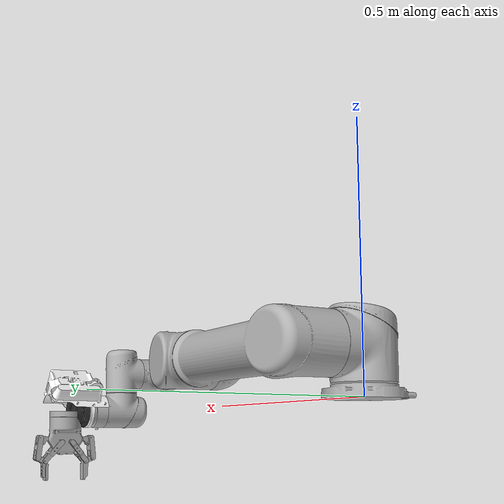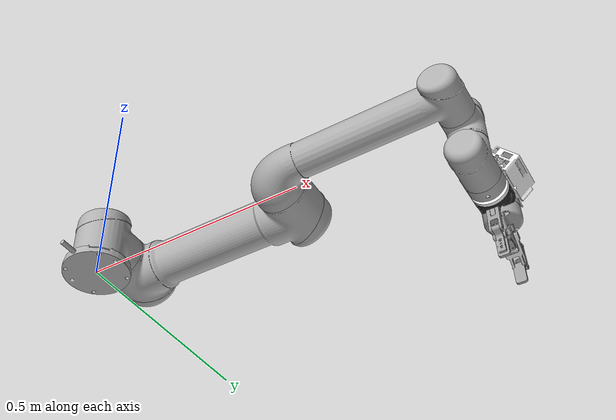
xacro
<?xml version="1.0"?>
<robot xmlns:xacro="http://www.ros.org/wiki/xacro"
       name="xamla_egomo" >
  <!-- gripper -->
    <xacro:include filename="$(find robotiq_85_description)/urdf/robotiq_85_gripper.urdf.xacro" />

  <!-- ur5 -->
  <xacro:include filename="$(find xamla_egomo)/urdf/ur5.urdf.xacro" />

  <!-- arm -->
	<!-- property list -->
	<!--xacro:property name="robot_stand_height" value="0.20"/-->
	<xacro:property name="arm_prefix" value=""/>
	<xacro:property name="joint_limited" value="false"/>
<!-- instantiating arm and gripper -->
	<xacro:ur5_robot prefix="${arm_prefix}" joint_limited='${joint_limited}'/>
<link name="world"/>
  <joint name="world_joint" type="fixed">
    <parent link="world"/>
    <child link="base_link"/>
    <origin rpy="0.0 0.0 0.0" xyz="0.0 0.0 0.0"/>
  </joint>

<link name="base"/>
  <joint name="base_link-base_fixed_joint" type="fixed">
    <!-- NOTE: this rotation is only needed as long as base_link itself is
                 not corrected wrt the real robot (ie: rotated over 180
                 degrees)
      -->
    <origin rpy="0 0 -3.14159265" xyz="0 0 0"/>
    <parent link="${arm_prefix}base_link"/>
    <child link="base"/>
  </joint>

<link name="tool0"/>
  <joint name="wrist_3_link-tool0_fixed_joint" type="fixed">
    <origin rpy="-1.570796326795 0 0" xyz="0 0.0823 0"/>
    <parent link="wrist_3_link"/>
    <child link="tool0"/>
  </joint>

  <!-- force torque sensor (robotiq) -->

  <link name="fts_robotside">
    <inertial>
      <origin rpy="0 0 0" xyz="0 0 0"/>
      <mass value="0.65"/>
      <inertia ixx="0.000661171875" ixy="0" ixz="0" iyy="0.000661171875" iyz="0" izz="0.00117"/>
    </inertial>
    <visual>
      <origin rpy="0 3.1415926535898 -1.570796326795" xyz="0 0 0.0375"/>
      <geometry>
        <mesh filename="package://xamla_egomo/meshes/robotiq-ft300/visual/ft300.dae"/>
      </geometry>
    </visual>
    <collision>
      <origin rpy="0 3.1415926535898 -1.570796326795" xyz="0 0 0.0375"/>
      <geometry>
        <mesh filename="package://xamla_egomo/meshes/robotiq-ft300/collision/ft300.stl"/>
      </geometry>
    </collision>
  </link>

  <!-- virtual measurement frame -->
  <joint name="measurment_joint" type="fixed">
    <origin rpy="0 0 0" xyz="0 0 0.01625"/>
    <parent link="fts_robotside"/>
    <child link="robotiq_force_torque_frame_id"/>
  </joint>
  <link name="robotiq_force_torque_frame_id"/>

  <!-- toolside frame -->
  <joint name="toolside_joint" type="fixed">
    <origin rpy="0 0 0" xyz="0 0 0.0375"/>
    <parent link="fts_robotside"/>
    <child link="fts_toolside"/>
  </joint>
  <link name="fts_toolside"/>

  <link name="camera_robotside">
    <visual>
      <origin rpy="0 0 0" xyz="0 0 0"/>
      <geometry>
        <mesh filename="package://xamla_egomo/meshes/egomo-1/visual/egomo-1.dae"/>
      </geometry>
      <material name="white">
        <color rgba="1 1 1 1"/>
      </material>
    </visual>
    <collision>
      <origin rpy="0 0 0" xyz="0 0 0"/>
      <geometry>
        <mesh filename="package://xamla_egomo/meshes/egomo-1/collision/egomo-1.stl"/>
      </geometry>
    </collision>
  </link>

  <!-- Mount the force torque sensor (fts) to the robot -->

  <joint name="fts_to_robot" type="fixed" >
    <parent link="tool0" />
    <child link="fts_robotside" />
    <origin xyz="0 0 0.011" rpy="0 0 0" />
  </joint>

  <!-- Mount the cameras to the robot -->

  <joint name="camera_to_robot" type="fixed" >
    <parent link="tool0" />
    <child link="camera_robotside" />
    <origin xyz="0 0 0" rpy="0 0 0" />
  </joint>

	<!-- end of arm workcell joint definitions-->
    <xacro:robotiq_85_gripper prefix="" parent="fts_toolside" >
	<origin xyz="0.0 0 0.0109" rpy="0 -${pi/2} ${pi/2}"/>
    </xacro:robotiq_85_gripper>

</robot>

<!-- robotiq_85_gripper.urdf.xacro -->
<robot name="robotiq_85_gripper" xmlns:xacro="http://ros.org/wiki/xacro">
    <xacro:macro name="robotiq_85_gripper" params="prefix parent *origin">
        <link name="${prefix}robotiq_85_coupling">
            <visual>
                <geometry>
                    <mesh filename="package://egomo_ur5/meshes/robotiq-2-finger-85/visual/gripper_coupling.dae" />
                </geometry>
                <origin rpy="0 0 ${pi}" xyz="0 0 0" />
            </visual>
            <collision>
                <geometry>
                    <mesh filename="package://egomo_ur5/meshes/robotiq-2-finger-85/collision/gripper_coupling.stl" />
                </geometry>
                <origin rpy="0 0 ${pi}" xyz="0 0 0" />
            </collision>
        </link>
        <!-- Mount the gripper to flansh -->
        <joint name="${prefix}gripper_to_flange" type="fixed">
            <parent link="${parent}" />
            <child link="${prefix}robotiq_85_coupling" />
            <xacro:insert_block name="origin" />
        </joint>
        <joint name="${prefix}robotiq_85_base_joint" type="fixed">
            <parent link="${prefix}robotiq_85_coupling" />
            <child link="robotiq_85_base" />
            <origin xyz="0 0 0.0109" rpy="0 0 0" />
            <xacro:insert_block name="origin" />
        </joint>
        <link name="${prefix}robotiq_85_base">
            <visual>
                <geometry>
                    <mesh filename="package://egomo_ur5/meshes/robotiq-2-finger-85/visual/gripper_base.dae" />
                </geometry>
                <origin rpy="0 0 ${pi}" xyz="0 0 0" />
            </visual>
            <collision>
                <geometry>
                    <mesh filename="package://egomo_ur5/meshes/robotiq-2-finger-85/collision/gripper_base.stl" />
                </geometry>
                <origin rpy="0 0 ${pi}" xyz="0 0 0" />
            </collision>
        </link>
        <link name="${prefix}robotiq_85_finger_right_1">
            <visual>
                <geometry>
                    <mesh filename="package://egomo_ur5/meshes/robotiq-2-finger-85/visual/gripper_finger_right_1.dae" />
                </geometry>
                <origin rpy="0 0 3.14159265359" xyz="-0.0305864 0 -0.0549191" />
            </visual>
            <collision>
                <geometry>
                    <mesh filename="package://egomo_ur5/meshes/robotiq-2-finger-85/collision/gripper_finger_right_1.stl" />
                </geometry>
                <origin rpy="0 0 3.14159265359" xyz="-0.0305864 0 -0.0549191" />
            </collision>
        </link>
        <link name="${prefix}robotiq_85_finger_right_2">
            <visual>
                <geometry>
                    <mesh filename="package://egomo_ur5/meshes/robotiq-2-finger-85/visual/gripper_finger_right_2.dae" />
                </geometry>
                <origin rpy="0 0 3.14159265359" xyz="-0.0621231 0 -0.0511592" />
            </visual>
            <collision>
                <geometry>
                    <mesh filename="package://egomo_ur5/meshes/robotiq-2-finger-85/collision/gripper_finger_right_2.stl" />
                </geometry>
                <origin rpy="0 0 3.14159265359" xyz="-0.0621231 0 -0.0511592" />
            </collision>
        </link>
        <link name="${prefix}robotiq_85_finger_right_3">
            <visual>
                <geometry>
                    <mesh filename="package://egomo_ur5/meshes/robotiq-2-finger-85/visual/gripper_finger_right_3.dae" />
                </geometry>
                <origin rpy="0 0 3.14159265359" xyz="-0.0127161 0 -0.0613987" />
            </visual>
            <collision>
                <geometry>
                    <mesh filename="package://egomo_ur5/meshes/robotiq-2-finger-85/collision/gripper_finger_right_3.stl" />
                </geometry>
                <origin rpy="0 0 3.14159265359" xyz="-0.0127161 0 -0.0613987" />
            </collision>
        </link>
        <link name="${prefix}robotiq_85_finger_right_4">
            <visual>
                <geometry>
                    <mesh filename="package://egomo_ur5/meshes/robotiq-2-finger-85/visual/gripper_finger_right_4.dae" />
                </geometry>
                <origin rpy="0 0 3.14159265359" xyz="-0.0498492 0 -0.1048415" />
            </visual>
            <collision>
                <geometry>
                    <mesh filename="package://egomo_ur5/meshes/robotiq-2-finger-85/collision/gripper_finger_right_4.stl" />
                </geometry>
                <origin rpy="0 0 3.14159265359" xyz="-0.0498492 0 -0.1048415" />
            </collision>
        </link>
        <link name="${prefix}robotiq_85_finger_left_1">
            <visual>
                <geometry>
                    <mesh filename="package://egomo_ur5/meshes/robotiq-2-finger-85/visual/gripper_finger_left_1.dae" />
                </geometry>
                <origin rpy="0 0 3.14159265359" xyz="0.0305864 0 -0.0549191" />
            </visual>
            <collision>
                <geometry>
                    <mesh filename="package://egomo_ur5/meshes/robotiq-2-finger-85/collision/gripper_finger_left_1.stl" />
                </geometry>
                <origin rpy="0 0 3.14159265359" xyz="0.0305864 0 -0.0549191" />
            </collision>
        </link>
        <link name="${prefix}robotiq_85_finger_left_2">
            <visual>
                <geometry>
                    <mesh filename="package://egomo_ur5/meshes/robotiq-2-finger-85/visual/gripper_finger_left_2.dae" />
                </geometry>
                <origin rpy="0 0 3.14159265359" xyz="0.0621231 0 -0.0511592" />
            </visual>
            <collision>
                <geometry>
                    <mesh filename="package://egomo_ur5/meshes/robotiq-2-finger-85/collision/gripper_finger_left_2.stl" />
                </geometry>
                <origin rpy="0 0 3.14159265359" xyz="0.0621231 0 -0.0511592" />
            </collision>
        </link>
        <link name="${prefix}robotiq_85_finger_left_3">
            <visual>
                <geometry>
                    <mesh filename="package://egomo_ur5/meshes/robotiq-2-finger-85/visual/gripper_finger_left_3.dae" />
                </geometry>
                <origin rpy="0 0 3.14159265359" xyz="0.0127161 0 -0.0613987" />
            </visual>
            <collision>
                <geometry>
                    <mesh filename="package://egomo_ur5/meshes/robotiq-2-finger-85/collision/gripper_finger_left_3.stl" />
                </geometry>
                <origin rpy="0 0 3.14159265359" xyz="0.0127161 0 -0.0613987" />
            </collision>
        </link>
        <link name="${prefix}robotiq_85_finger_left_4">
            <visual>
                <geometry>
                    <mesh filename="package://egomo_ur5/meshes/robotiq-2-finger-85/visual/gripper_finger_left_4.dae" />
                </geometry>
                <origin rpy="0 0 3.14159265359" xyz="0.0498492 0 -0.1048415" />
            </visual>
            <collision>
                <geometry>
                    <mesh filename="package://egomo_ur5/meshes/robotiq-2-finger-85/collision/gripper_finger_left_4.stl" />
                </geometry>
                <origin rpy="0 0 3.14159265359" xyz="0.0498492 0 -0.1048415" />
            </collision>
        </link>
        <joint name="${prefix}robotiq_85_finger_right_1_joint" type="revolute">
            <parent link="${prefix}robotiq_85_base" />
            <child link="${prefix}robotiq_85_finger_right_1" />
            <axis xyz="0 -1 0" />
            <origin rpy="0 0 0" xyz="0.0305864 0 0.0549191" />
            <limit effort="1000" lower="0" upper="0.811" velocity="2.0" />
        </joint>
        <joint name="${prefix}robotiq_85_finger_right_2_joint" type="fixed">
            <parent link="${prefix}robotiq_85_finger_right_1" />
            <child link="${prefix}robotiq_85_finger_right_2" />
            <axis xyz="0 1 0" />
            <origin rpy="0 0 0" xyz="0.0315367 0 -0.0037599" />
        </joint>
        <joint name="${prefix}robotiq_85_finger_right_3_joint" type="revolute">
            <parent link="${prefix}robotiq_85_base" />
            <child link="${prefix}robotiq_85_finger_right_3" />
            <axis xyz="0 1 0" />
            <origin rpy="0 0 0" xyz="0.0127161 0 0.0613987" />
            <limit effort="1000" lower="0" upper="0.811" velocity="2.0" />
            <mimic joint="robotiq_85_finger_right_1_joint" multiplier="-1" offset="0" />
        </joint>
        <joint name="${prefix}robotiq_85_finger_right_4_joint" type="revolute">
            <parent link="${prefix}robotiq_85_finger_right_3" />
            <child link="${prefix}robotiq_85_finger_right_4" />
            <axis xyz="0 1 0" />
            <origin rpy="0 0 0" xyz="0.0371331 0 0.0434428" />
            <mimic joint="${prefix}robotiq_85_finger_right_1_joint" multiplier="1" offset="0" />
            <limit effort="1000" lower="-0.811" upper="0" velocity="2.0" />
        </joint>
        <joint name="${prefix}robotiq_85_finger_left_1_joint" type="revolute">
            <parent link="robotiq_85_base" />
            <child link="${prefix}robotiq_85_finger_left_1" />
            <axis xyz="0 1 0" />
            <origin rpy="0 0 0" xyz="-0.0305864 0 0.0549191" />
            <mimic joint="${prefix}robotiq_85_finger_right_1_joint" multiplier="1" offset="0" />
            <limit effort="1000" lower="-0.811" upper="0" velocity="2.0" />
        </joint>
        <joint name="${prefix}robotiq_85_finger_left_2_joint" type="fixed">
            <parent link="${prefix}robotiq_85_finger_left_1" />
            <child link="${prefix}robotiq_85_finger_left_2" />
            <axis xyz="0 1 0" />
            <origin rpy="0 0 0" xyz="-0.0315367 0 -0.0037599" />
        </joint>
        <joint name="${prefix}robotiq_85_finger_left_3_joint" type="revolute">
            <parent link="${prefix}robotiq_85_base" />
            <child link="${prefix}robotiq_85_finger_left_3" />
            <axis xyz="0 1 0" />
            <origin rpy="0 0 0" xyz="-0.0127161 0 0.0613987" />
            <mimic joint="${prefix}robotiq_85_finger_right_1_joint" multiplier="1" offset="0" />
            <limit effort="1000" lower="-0.811" upper="0" velocity="2.0" />
        </joint>
        <joint name="${prefix}robotiq_85_finger_left_4_joint" type="revolute">
            <parent link="${prefix}robotiq_85_finger_left_3" />
            <child link="${prefix}robotiq_85_finger_left_4" />
            <axis xyz="0 1 0" />
            <origin rpy="0 0 0" xyz="-0.0371331 0 0.0434428" />
            <mimic joint="${prefix}robotiq_85_finger_right_1_joint" multiplier="-1" offset="0" />
            <limit effort="1000" lower="0" upper="0.811" velocity="2.0" />
        </joint>
    </xacro:macro>
</robot>

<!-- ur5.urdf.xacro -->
<robot xmlns:sensor="http://playerstage.sourceforge.net/gazebo/xmlschema/#sensor"
       xmlns:controller="http://playerstage.sourceforge.net/gazebo/xmlschema/#controller"
       xmlns:interface="http://playerstage.sourceforge.net/gazebo/xmlschema/#interface"
       xmlns:xacro="http://ros.org/wiki/xacro">

  <xacro:include filename="$(find ur_description)/urdf/ur.transmission.xacro" />
  <xacro:include filename="$(find ur_description)/urdf/ur.gazebo.xacro" />
  <xacro:include filename="$(find ur_description)/urdf/common.gazebo.xacro" />

  <property name="pi" value="3.14159265" />

  <!-- Inertia parameters -->
  <property name="base_mass" value="4.0" />  <!-- This mass might be incorrect -->
  <property name="shoulder_mass" value="3.7000" />
  <property name="upper_arm_mass" value="8.3930" />
  <property name="forearm_mass" value="2.2750" />
  <property name="wrist_1_mass" value="1.2190" />
  <property name="wrist_2_mass" value="1.2190" />
  <property name="wrist_3_mass" value="0.1879" />

  <property name="shoulder_cog" value="0.0 0.00193 -0.02561" />
  <property name="upper_arm_cog" value="0.0 -0.024201 0.2125" />
  <property name="forearm_cog" value="0.0 0.0265 0.11993" />
  <property name="wrist_1_cog" value="0.0 0.110949 0.01634" />
  <property name="wrist_2_cog" value="0.0 0.0018 0.11099" />
  <property name="wrist_3_cog" value="0.0 0.001159 0.0" />

  <!-- Kinematic model -->
  <!-- Properties from urcontrol.conf -->
  <property name="ur5_d1" value="0.089159" />
  <property name="ur5_a2" value="-0.42500" />
  <property name="ur5_a3" value="-0.39225" />
  <property name="ur5_d4" value="0.10915" />
  <property name="ur5_d5" value="0.09465" />
  <property name="ur5_d6" value="0.0823" />

  <!-- Arbitrary offsets for shoulder/elbow joints -->
  <property name="shoulder_offset" value="0.13585" />  <!-- measured from model -->
  <property name="elbow_offset" value="-0.1197" /> <!-- measured from model -->

  <!-- link lengths used in model -->
  <property name="shoulder_height" value="${ur5_d1}" />
  <property name="upper_arm_length" value="${-ur5_a2}" />
  <property name="forearm_length" value="${-ur5_a3}" />
  <property name="wrist_1_length" value="${ur5_d4 - elbow_offset - shoulder_offset}" />
  <property name="wrist_2_length" value="${ur5_d5}" />
  <property name="wrist_3_length" value="${ur5_d6}" />
  <!--property name="shoulder_height" value="0.089159" /-->
  <!--property name="shoulder_offset" value="0.13585" /-->  <!-- shoulder_offset - elbow_offset + wrist_1_length = 0.10915 -->
  <!--property name="upper_arm_length" value="0.42500" /-->
  <!--property name="elbow_offset" value="0.1197" /-->       <!-- CAD measured -->
  <!--property name="forearm_length" value="0.39225" /-->
  <!--property name="wrist_1_length" value="0.093" /-->     <!-- CAD measured -->
  <!--property name="wrist_2_length" value="0.09465" /-->   <!-- In CAD this distance is 0.930, but in the spec it is 0.09465 -->
  <!--property name="wrist_3_length" value="0.0823" /-->

  <property name="shoulder_radius" value="0.060" />   <!-- manually measured -->
  <property name="upper_arm_radius" value="0.054" />  <!-- manually measured -->
  <property name="elbow_radius" value="0.060" />      <!-- manually measured -->
  <property name="forearm_radius" value="0.040" />    <!-- manually measured -->
  <property name="wrist_radius" value="0.045" />      <!-- manually measured -->

  <xacro:macro name="cylinder_inertial" params="radius length mass *origin">
    <inertial>
      <mass value="${mass}" />
      <insert_block name="origin" />
      <inertia ixx="${0.0833333 * mass * (3 * radius * radius + length * length)}" ixy="0.0" ixz="0.0"
        iyy="${0.0833333 * mass * (3 * radius * radius + length * length)}" iyz="0.0"
        izz="${0.5 * mass * radius * radius}" />
    </inertial>
  </xacro:macro>

  <xacro:macro name="ur5_robot" params="prefix joint_limited">

    <link name="${prefix}base_link" >
      <visual>
        <geometry>
          <mesh filename="package://ur_description/meshes/ur5/visual/base.dae" />
        </geometry>
        <material name="LightGrey">
          <color rgba="0.7 0.7 0.7 1.0"/>
        </material>
      </visual>
      <collision>
        <geometry>
          <mesh filename="package://ur_description/meshes/ur5/collision/base.stl" />
        </geometry>
      </collision>
      <xacro:cylinder_inertial radius="0.06" length="0.05" mass="${base_mass}">
        <origin xyz="0.0 0.0 0.0" rpy="0 0 0" />
      </xacro:cylinder_inertial>
    </link>

    <joint name="${prefix}shoulder_pan_joint" type="revolute">
      <parent link="${prefix}base_link" />
      <child link = "${prefix}shoulder_link" />
      <origin xyz="0.0 0.0 ${shoulder_height}" rpy="0.0 0.0 0.0" />
      <axis xyz="0 0 1" />
      <xacro:unless value="${joint_limited}">
        <limit lower="${-2.0 * pi}" upper="${2.0 * pi}" effort="150.0" velocity="3.15"/>
      </xacro:unless>
      <xacro:if value="${joint_limited}">
        <limit lower="${-pi}" upper="${pi}" effort="150.0" velocity="3.15"/>
      </xacro:if>
      <dynamics damping="0.0" friction="0.0"/>
    </joint>

    <link name="${prefix}shoulder_link">
      <visual>
        <geometry>
          <mesh filename="package://ur_description/meshes/ur5/visual/shoulder.dae" />
        </geometry>
        <material name="LightGrey">
          <color rgba="0.7 0.7 0.7 1.0"/>
        </material>
      </visual>
      <collision>
        <geometry>
          <mesh filename="package://ur_description/meshes/ur5/collision/shoulder.stl" />
        </geometry>
      </collision>
      <xacro:cylinder_inertial radius="0.06" length="0.15" mass="${shoulder_mass}">
        <origin xyz="0.0 0.0 0.0" rpy="0 0 0" />
      </xacro:cylinder_inertial>
    </link>

    <joint name="${prefix}shoulder_lift_joint" type="revolute">
      <parent link="${prefix}shoulder_link" />
      <child link = "${prefix}upper_arm_link" />
      <origin xyz="0.0 ${shoulder_offset} 0.0" rpy="0.0 ${pi / 2.0} 0.0" />
      <axis xyz="0 1 0" />
      <xacro:unless value="${joint_limited}">
        <limit lower="${-2.0 * pi}" upper="${2.0 * pi}" effort="150.0" velocity="3.15"/>
      </xacro:unless>
      <xacro:if value="${joint_limited}">
        <limit lower="${-pi}" upper="${pi}" effort="150.0" velocity="3.15"/>
      </xacro:if>
      <dynamics damping="0.0" friction="0.0"/>
    </joint>

    <link name="${prefix}upper_arm_link">
      <visual>
        <geometry>
          <mesh filename="package://ur_description/meshes/ur5/visual/upperarm.dae" />
        </geometry>
        <material name="LightGrey">
          <color rgba="0.7 0.7 0.7 1.0"/>
        </material>
      </visual>
      <collision>
        <geometry>
          <mesh filename="package://ur_description/meshes/ur5/collision/upperarm.stl" />
        </geometry>
      </collision>
      <xacro:cylinder_inertial radius="0.06" length="0.56" mass="${upper_arm_mass}">
        <origin xyz="0.0 0.0 0.28" rpy="0 0 0" />
      </xacro:cylinder_inertial>
    </link>

    <joint name="${prefix}elbow_joint" type="revolute">
      <parent link="${prefix}upper_arm_link" />
      <child link = "${prefix}forearm_link" />
      <origin xyz="0.0 ${elbow_offset} ${upper_arm_length}" rpy="0.0 0.0 0.0" />
      <axis xyz="0 1 0" />
      <xacro:unless value="${joint_limited}">
        <limit lower="${-2.0 * pi}" upper="${2.0 * pi}" effort="150.0" velocity="3.15"/>
      </xacro:unless>
      <xacro:if value="${joint_limited}">
        <limit lower="${-pi}" upper="${pi}" effort="150.0" velocity="3.15"/>
      </xacro:if>
      <dynamics damping="0.0" friction="0.0"/>
    </joint>

    <link name="${prefix}forearm_link">
      <visual>
        <geometry>
          <mesh filename="package://ur_description/meshes/ur5/visual/forearm.dae" />
        </geometry>
        <material name="LightGrey">
          <color rgba="0.7 0.7 0.7 1.0"/>
        </material>
      </visual>
      <collision>
        <geometry>
          <mesh filename="package://ur_description/meshes/ur5/collision/forearm.stl" />
        </geometry>
      </collision>
      <xacro:cylinder_inertial radius="0.06" length="0.5" mass="${forearm_mass}">
        <origin xyz="0.0 0.0 0.25" rpy="0 0 0" />
      </xacro:cylinder_inertial>
    </link>

    <joint name="${prefix}wrist_1_joint" type="revolute">
      <parent link="${prefix}forearm_link" />
      <child link = "${prefix}wrist_1_link" />
      <origin xyz="0.0 0.0 ${forearm_length}" rpy="0.0 ${pi / 2.0} 0.0" />
      <axis xyz="0 1 0" />
      <xacro:unless value="${joint_limited}">
        <limit lower="${-2.0 * pi}" upper="${2.0 * pi}" effort="28.0" velocity="3.2"/>
      </xacro:unless>
      <xacro:if value="${joint_limited}">
        <limit lower="${-pi}" upper="${pi}" effort="28.0" velocity="3.2"/>
      </xacro:if>
      <dynamics damping="0.0" friction="0.0"/>
    </joint>

    <link name="${prefix}wrist_1_link">
      <visual>
        <geometry>
          <mesh filename="package://ur_description/meshes/ur5/visual/wrist1.dae" />
        </geometry>
        <material name="LightGrey">
          <color rgba="0.7 0.7 0.7 1.0"/>
        </material>
      </visual>
      <collision>
        <geometry>
          <mesh filename="package://ur_description/meshes/ur5/collision/wrist1.stl" />
        </geometry>
      </collision>
      <xacro:cylinder_inertial radius="0.6" length="0.12" mass="${wrist_1_mass}">
        <origin xyz="0.0 0.0 0.0" rpy="0 0 0" />
      </xacro:cylinder_inertial>
    </link>

    <joint name="${prefix}wrist_2_joint" type="revolute">
      <parent link="${prefix}wrist_1_link" />
      <child link = "${prefix}wrist_2_link" />
      <origin xyz="0.0 ${wrist_1_length} 0.0" rpy="0.0 0.0 0.0" />
      <axis xyz="0 0 1" />
      <xacro:unless value="${joint_limited}">
        <limit lower="${-2.0 * pi}" upper="${2.0 * pi}" effort="28.0" velocity="3.2"/>
      </xacro:unless>
      <xacro:if value="${joint_limited}">
        <limit lower="${-pi}" upper="${pi}" effort="28.0" velocity="3.2"/>
      </xacro:if>
      <dynamics damping="0.0" friction="0.0"/>
    </joint>

    <link name="${prefix}wrist_2_link">
      <visual>
        <geometry>
          <mesh filename="package://ur_description/meshes/ur5/visual/wrist2.dae" />
        </geometry>
        <material name="LightGrey">
          <color rgba="0.7 0.7 0.7 1.0"/>
        </material>
      </visual>
      <collision>
        <geometry>
          <mesh filename="package://ur_description/meshes/ur5/collision/wrist2.stl" />
        </geometry>
      </collision>
      <xacro:cylinder_inertial radius="0.6" length="0.12" mass="${wrist_2_mass}">
        <origin xyz="0.0 0.0 0.0" rpy="0 0 0" />
      </xacro:cylinder_inertial>
    </link>

    <joint name="${prefix}wrist_3_joint" type="revolute">
      <parent link="${prefix}wrist_2_link" />
      <child link = "${prefix}wrist_3_link" />
      <origin xyz="0.0 0.0 ${wrist_2_length}" rpy="0.0 0.0 0.0" />
      <axis xyz="0 1 0" />
      <xacro:unless value="${joint_limited}">
        <limit lower="${-2.0 * pi}" upper="${2.0 * pi}" effort="28.0" velocity="3.2"/>
      </xacro:unless>
      <xacro:if value="${joint_limited}">
        <limit lower="${-pi}" upper="${pi}" effort="28.0" velocity="3.2"/>
      </xacro:if>
      <dynamics damping="0.0" friction="0.0"/>
    </joint>

    <link name="${prefix}wrist_3_link">
      <visual>
        <geometry>
          <mesh filename="package://ur_description/meshes/ur5/visual/wrist3.dae" />
        </geometry>
        <material name="LightGrey">
          <color rgba="0.7 0.7 0.7 1.0"/>
        </material>
      </visual>
      <collision>
        <geometry>
          <mesh filename="package://ur_description/meshes/ur5/collision/wrist3.stl" />
        </geometry>
      </collision>
      <xacro:cylinder_inertial radius="0.6" length="0.12" mass="${wrist_3_mass}">
        <origin xyz="0.0 0.0 0.0" rpy="0 0 0" />
      </xacro:cylinder_inertial>
    </link>

    <joint name="${prefix}ee_fixed_joint" type="fixed">
      <parent link="${prefix}wrist_3_link" />
      <child link = "${prefix}ee_link" />
      <origin xyz="0.0 ${wrist_3_length} 0.0" rpy="-1.570796326795 0.0 0" />
    </joint>

    <link name="${prefix}ee_link">
      <collision>
        <geometry>
          <box size="0.01 0.01 0.01"/>
        </geometry>
        <origin rpy="0 0 0" xyz="-0.01 0.0 0"/>
      </collision>
    </link>

  <xacro:ur_arm_transmission prefix="${prefix}" />

  <gazebo reference="universal_robot">
    <material>Gazebo/Blue</material>
  </gazebo>

  </xacro:macro>
</robot>
